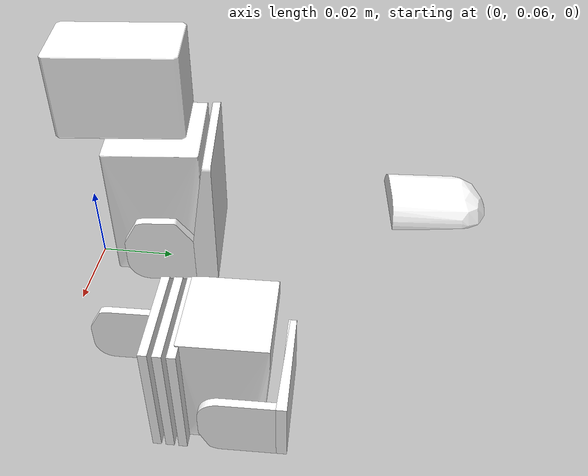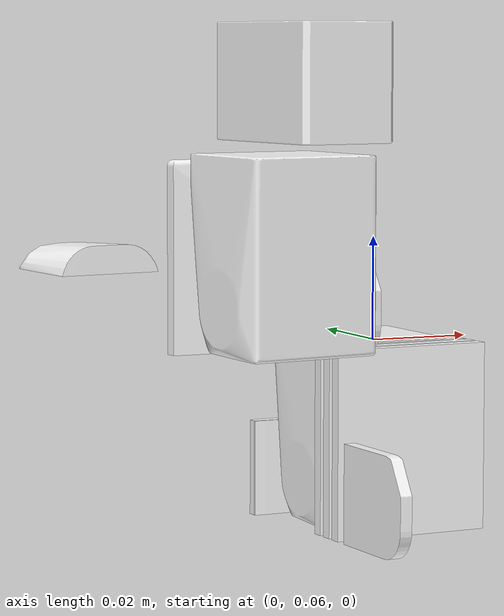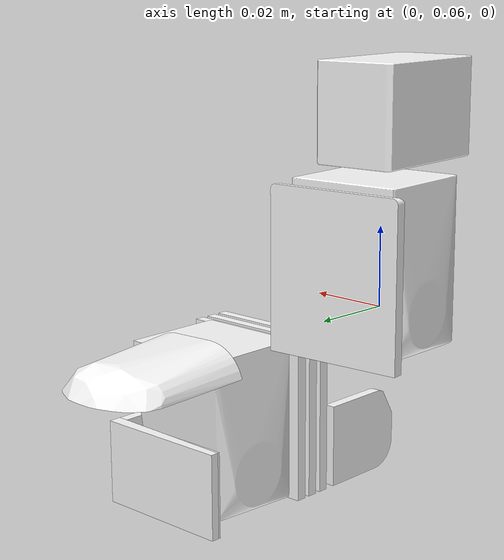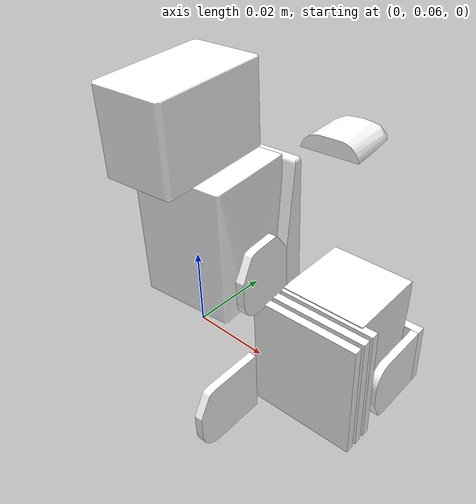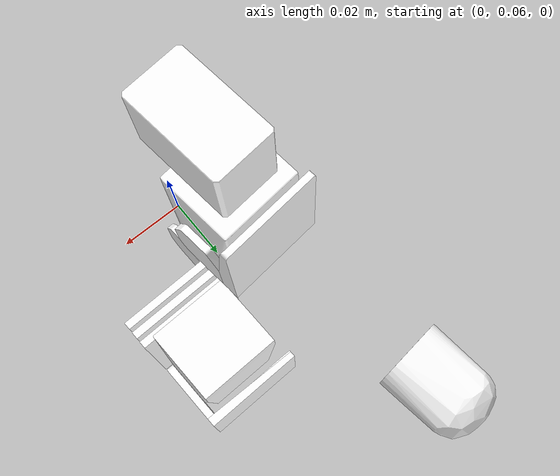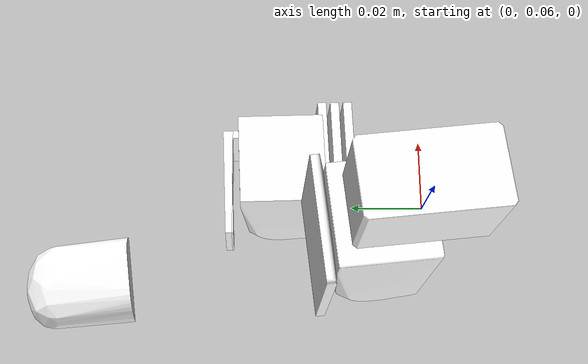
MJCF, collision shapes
<!-- finger2_3dof.xml - Reduced DOF finger maintaining kinematic structure -->
<mujoco model="finger">
  <compiler angle="radian"/>
  <asset>
    <!-- base -->
    <mesh name="finger_palm_servo" file="robot_meshes/finger_palm_servo_part0.obj"/>
    <mesh name="finger_base" file="robot_meshes/finger_base_servo_part0.obj"/>
    <mesh name="finger_base_lever_part0" file="robot_meshes/finger_base_lever_part0.obj"/>
    <mesh name="finger_base_lever_part1" file="robot_meshes/finger_base_lever_part1.obj"/>
    <mesh name="finger_base_lever_part2" file="robot_meshes/finger_base_lever_part2.obj"/>
    <mesh name="finger_grammar1" file="robot_meshes/finger_grammar1_part0.obj"/>

    <!-- middle -->
    <mesh name="finger_middle" file="robot_meshes/finger_middle_servo_part0.obj"/>
    <mesh name="finger_middle_lever_part0" file="robot_meshes/finger_middle_lever_part0.obj"/>
    <mesh name="finger_middle_lever_part1" file="robot_meshes/finger_middle_lever_part1.obj"/>
    <mesh name="finger_middle_lever_part2" file="robot_meshes/finger_middle_lever_part2.obj"/>
    <mesh name="finger_grammar2" file="robot_meshes/finger_grammar2_part0.obj"/>

    <!-- end -->
    <mesh name="finger_end" file="robot_meshes/finger_end_servo_part0.obj"/>
    <mesh name="finger_end_lever_part0" file="robot_meshes/finger_end_lever_part0.obj"/>
    <mesh name="finger_end_lever_part1" file="robot_meshes/finger_end_lever_part1.obj"/>
    <mesh name="finger_end_lever_part2" file="robot_meshes/finger_end_lever_part2.obj"/>
    <mesh name="finger_tip" file="robot_meshes/finger_tip_part0.obj"/>

    <!-- Visual Meshes -->
    <mesh name="finger_palm_servo_vis" file="robot_meshes/visual/finger_palm_servo_vis.obj"/>
    <mesh name="finger_base_vis" file="robot_meshes/visual/finger_base_vis.obj"/>
    <mesh name="finger_base_lever_vis" file="robot_meshes/visual/finger_base_lever_vis.obj"/>
    <mesh name="finger_grammar1_vis" file="robot_meshes/visual/finger_grammar1_vis.obj"/>
    <mesh name="finger_middle_vis" file="robot_meshes/visual/finger_middle_vis.obj"/>
    <mesh name="finger_middle_lever_vis" file="robot_meshes/visual/finger_middle_lever_vis.obj"/>
    <mesh name="finger_grammar2_vis" file="robot_meshes/visual/finger_grammar2_vis.obj"/>
    <mesh name="finger_end_vis" file="robot_meshes/visual/finger_end_vis.obj"/>
    <mesh name="finger_end_lever_vis" file="robot_meshes/visual/finger_end_lever_vis.obj"/>
    <mesh name="finger_tip_vis" file="robot_meshes/visual/finger_tip_vis.obj"/>
  </asset>

  <default>
      <geom solimp="0.999 0.999 0.001 0.0001 1" solref="0.0001 1" friction=".2" condim="6" margin="0.002"/>
      <joint damping="0.01" frictionloss="0.001" armature="0.0015"/>
      <default class="servo">
        <position kp="0.5" kv="0.01"/>
        <default class="tip"><geom friction="0.2 0.002 0.0001"/></default>
        <default class="hand"><geom friction="0.8 0.01 0.001"/></default>
      </default>
  </default>

  <contact>
    <!-- Simplified contact exclusions - remove middle segment references -->
    <exclude body1="finger_base" body2="palm"/>
    <exclude body1="palm" body2="finger_base"/>
    <exclude body1="finger_palm_servo" body2="palm"/>
    <exclude body1="palm" body2="finger_palm_servo"/>
    <exclude body1="finger_base_lever" body2="palm"/>
    <exclude body1="palm" body2="finger_base_lever"/>

    <!-- Intra-finger collision exclusions -->
    <exclude body1="finger_root" body2="finger_palm_servo"/>
    <exclude body1="finger_root" body2="finger_base"/>
    <exclude body1="finger_root" body2="finger_base_lever"/>
    <exclude body1="finger_root" body2="finger_end"/>
    <exclude body1="finger_palm_servo" body2="finger_base"/>
    <exclude body1="finger_palm_servo" body2="finger_base_lever"/>
    <exclude body1="finger_palm_servo" body2="finger_end"/>
    <exclude body1="finger_base" body2="finger_base_lever"/>
    <exclude body1="finger_base" body2="finger_end"/>
    <exclude body1="finger_base_lever" body2="finger_end"/>
  </contact>

  <worldbody>
    <body name="finger_root" pos="0 0 0">
      <body name="finger_palm_servo" pos="0 0 0">
        <geom name="finger_palm_servo_geom" type="mesh" mesh="finger_palm_servo" group="1" rgba="1 1 1 1"/>
        <geom name="finger_palm_servo_vis_geom" type="mesh" mesh="finger_palm_servo_vis" group="0" contype="0" conaffinity="0"/>

        <body name="finger_base" pos="0 0 0">
          <joint name="finger_palm_joint" type="hinge" pos="0.01967 0.0562 0.0641" axis="0 0 1" range="-0.698 0.698" limited="true"/>
          <geom name="finger_base_geom" type="mesh" mesh="finger_base" group="1" rgba="1 1 1 1"/>
          <geom name="finger_base_vis_geom" type="mesh" mesh="finger_base_vis" group="0" contype="0" conaffinity="0"/>

          <body name="finger_base_lever" pos="0 0 0">
            <joint name="finger_base_joint" type="hinge" pos="0.03662 0.05775 0.00872" axis="-0.99975708 -0.0220405 0.0" range="0 1.5708" limited="true"/>
            <geom name="finger_base_lever_part0_geom" type="mesh" mesh="finger_base_lever_part0" group="1" rgba="1 1 1 1"/>
            <geom name="finger_base_lever_part1_geom" type="mesh" mesh="finger_base_lever_part1" group="1" rgba="1 1 1 1"/>
            <geom name="finger_base_lever_part2_geom" type="mesh" mesh="finger_base_lever_part2" group="1" rgba="1 1 1 1"/>
            <geom name="finger_base_lever_vis_geom" type="mesh" mesh="finger_base_lever_vis" group="0" contype="0" conaffinity="0"/>

            <geom name="finger_grammar1_0_geom" type="mesh" mesh="finger_grammar1" group="1" rgba="1 1 1 1"/>
            <geom name="finger_grammar1_0_vis_geom" type="mesh" mesh="finger_grammar1_vis" group="0" contype="0" conaffinity="0"/>

            <!-- second stack at P + Δ -->
            <body name="finger_grammar1_1" pos="-0.00008 0.00382 -0.00003">
              <geom name="finger_grammar1_1_geom" type="mesh" mesh="finger_grammar1" group="1" rgba="1 1 1 1"/>
              <geom name="finger_grammar1_1_vis_geom" type="mesh" mesh="finger_grammar1_vis" group="0" contype="0" conaffinity="0"/>

              <!-- third stack at P + 2Δ -->
              <body name="finger_grammar1_2" pos="-0.00008 0.00382 -0.00003">
                <geom name="finger_grammar1_2_geom" type="mesh" mesh="finger_grammar1" group="1" rgba="1 1 1 1"/>
                <geom name="finger_grammar1_2_vis_geom" type="mesh" mesh="finger_grammar1_vis" group="0" contype="0" conaffinity="0"/>

                <!-- KEEP these bodies but remove their geoms -->
                <body name="finger_middle" pos="0 0 0">
                  <!-- NO GEOMS - empty body to maintain kinematic structure -->

                  <body name="finger_middle_lever" pos="0 0 0">
                    <!-- NO JOINT - this joint is effectively removed -->
                    <joint name="finger_middle_joint" type="hinge" pos="0 0 0" axis="-0.99976365 -0.02174038 0." limited="true" range="0 1e-6"/>
                    <!-- NO GEOMS - empty body to maintain kinematic structure -->

                    <body name="finger_grammar2" pos="0 0 0">
                      <!-- NO GEOMS - empty body to maintain kinematic structure -->

                      <!-- Position finger_end with MERGED transform to compensate for removed segment -->
                      <!-- Original path: finger_middle(0,0,0) -> finger_middle_lever(0,0,0) -> finger_grammar2(0,0,0) -> finger_end(0,0,0) -->
                      <!-- But the actual joint was at finger_middle_lever with pos="0.03591 0.09056 0.00743" -->
                      <!-- Your measurement: delta x=0.71mm, y=32.74mm, z=1.41mm -->
                      <body name="finger_end" pos="0.00071 -0.03274 0.00141">
                        <geom name="finger_end_geom" type="mesh" mesh="finger_end" group="1" rgba="1 1 1 1"/>
                        <geom name="finger_end_vis_geom" type="mesh" mesh="finger_end_vis" group="0" contype="0" conaffinity="0"/>

                        <body name="finger_end_lever" pos="0 0 0">
                          <joint name="finger_end_joint" type="hinge" pos="0.03519 0.12336 0.00592" axis="-0.99976365 -0.02174038 0." range="0 1.5708" limited="true"/>
                          <geom name="finger_end_lever_part0_geom" type="mesh" mesh="finger_end_lever_part0" group="1" rgba="1 1 1 1"/>
                          <geom name="finger_end_lever_part1_geom" type="mesh" mesh="finger_end_lever_part1" group="1" rgba="1 1 1 1"/>
                          <geom name="finger_end_lever_part2_geom" type="mesh" mesh="finger_end_lever_part2" group="1" rgba="1 1 1 1"/>
                          <geom name="finger_end_lever_vis_geom" type="mesh" mesh="finger_end_lever_vis" group="0" contype="0" conaffinity="0"/>

                          <body name="finger_tip" pos="0 0 0">
                            <geom class="tip" name="finger_tip_geom" type="mesh" mesh="finger_tip" group="1" rgba="1 1 1 1"/>
                            <geom name="finger_tip_vis_geom" type="mesh" mesh="finger_tip_vis" group="0" contype="0" conaffinity="0"/>
                          </body>
                        </body>
                      </body>
                    </body>
                  </body>
                </body>
              </body>
            </body>
          </body>
        </body>
      </body>
    </body>
  </worldbody>

  <actuator>
    <position name="finger_palm_joint" class="servo" joint="finger_palm_joint" forcerange="-0.8 0.8" inheritrange="1"/>
    <position name="finger_base_joint" class="servo" joint="finger_base_joint" forcerange="-0.8 0.8" inheritrange="1"/>
    <position name="finger_middle_joint" class="servo" joint="finger_middle_joint" forcerange="-0.80 0.80" inheritrange="1"/>
    <position name="finger_end_joint" class="servo" joint="finger_end_joint" forcerange="-0.3 0.3" inheritrange="1"/>
  </actuator>
</mujoco>
